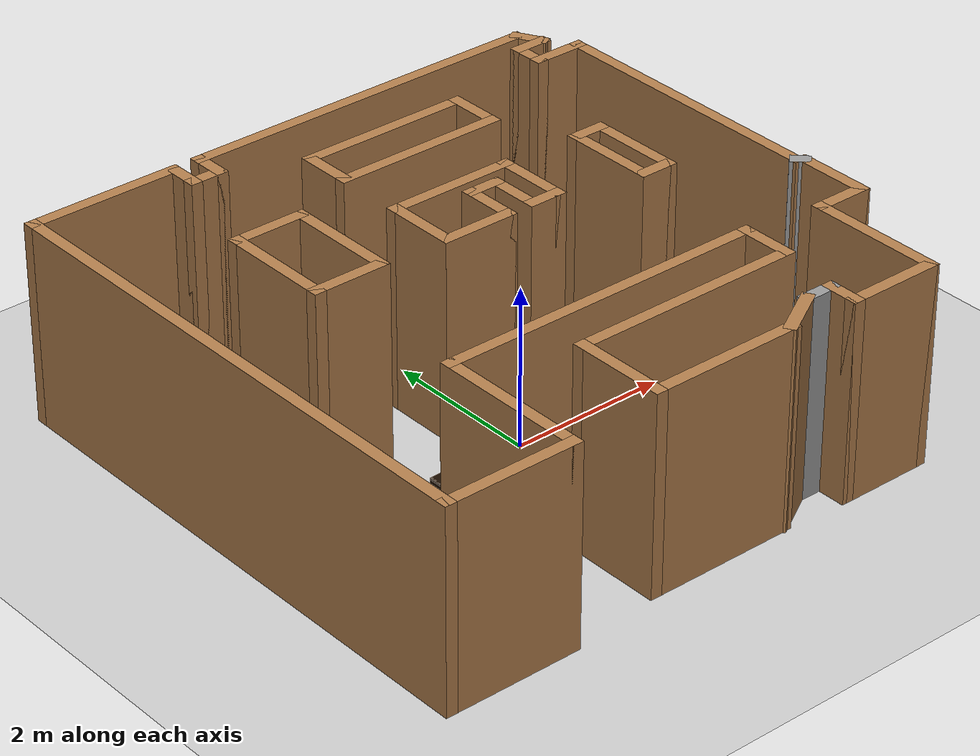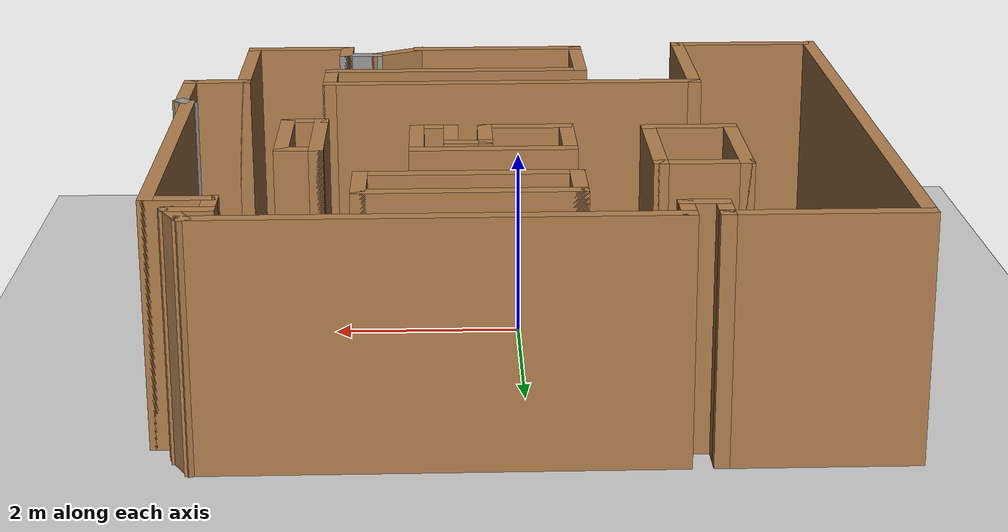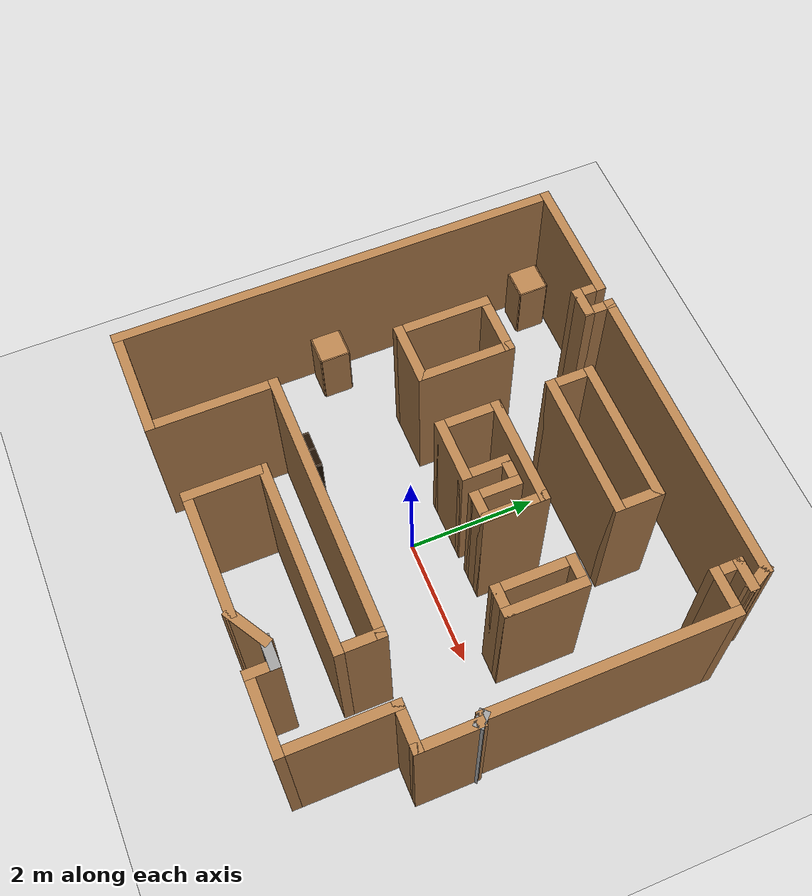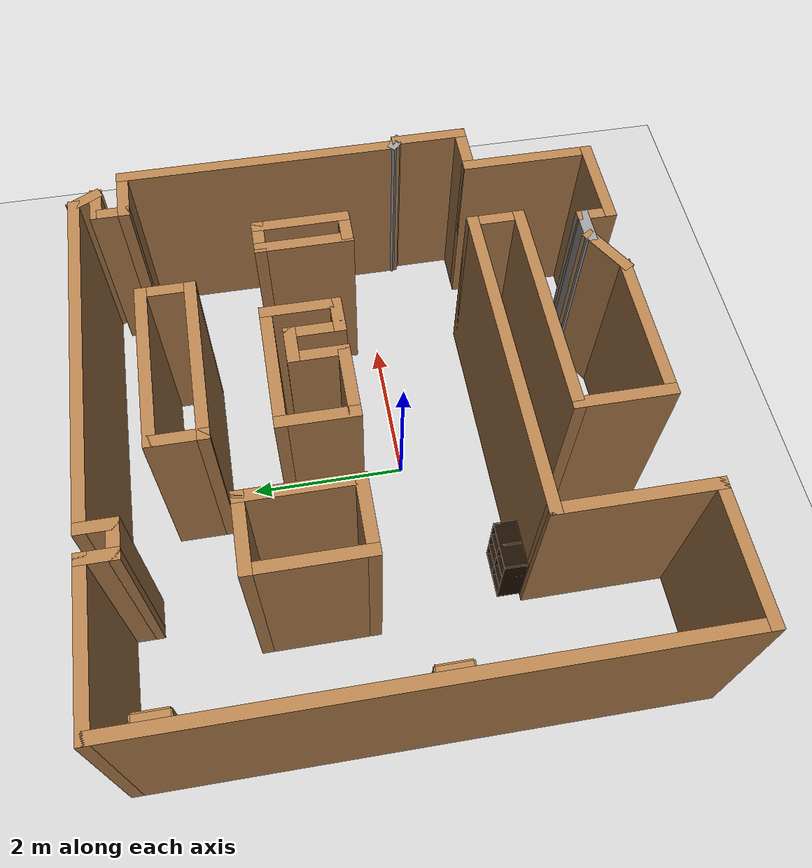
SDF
<sdf version="1.6">
 <world name="default">
  <light name="sun" type="directional">
   <pose>0 0 10 0 -0 0</pose>
   <diffuse>0.8 0.8 0.8 1</diffuse>
   <specular>0.2 0.2 0.2 1</specular>
   <attenuation>
    <range>1000</range>
    <constant>0.9</constant>
    <linear>0.01</linear>
    <quadratic>0.001</quadratic>
   </attenuation>
   <direction>-0.5 0.1 -0.9</direction>
  </light>
  <model name="ground_plane">
   <static>1</static>
   <link name="link">
    <collision name="collision">
     <geometry><plane><normal>0 0 1</normal><size>100 100</size></plane></geometry>
     <surface><friction><ode><mu>100</mu><mu2>50</mu2></ode></friction></surface>
    </collision>
    <visual name="visual">
     <cast_shadows>0</cast_shadows>
     <geometry><plane><normal>0 0 1</normal><size>100 100</size></plane></geometry>
     <material>
      <script><uri>file://media/materials/scripts/gazebo.material</uri><name>Gazebo/Grey</name></script>
     </material>
    </visual>
   </link>
  </model>
  <gravity>0 0 -9.8</gravity>
  <magnetic_field>6e-06 2.3e-05 -4.2e-05</magnetic_field>
  <atmosphere type="adiabatic"/>
  <physics name="default_physics" default="0" type="ode">
   <max_step_size>0.001</max_step_size>
   <real_time_factor>1</real_time_factor>
   <real_time_update_rate>1000</real_time_update_rate>
  </physics>
  <scene><ambient>0.4 0.4 0.4 1</ambient><background>0.7 0.7 0.7 1</background><shadows>1</shadows></scene>
  <spherical_coordinates>
   <surface_model>EARTH_WGS84</surface_model>
   <latitude_deg>0</latitude_deg>
   <longitude_deg>0</longitude_deg>
   <elevation>0</elevation>
   <heading_deg>0</heading_deg>
  </spherical_coordinates>
  <model name="map_6">
   <pose>0.022593 0.332375 0 0 -0 0</pose>
   <link name="Wall_0">
    <collision name="Wall_0_Collision">
     <geometry><box><size>4.75 0.15 2.5</size></box></geometry>
     <pose>0 0 1.25 0 -0 0</pose>
    </collision>
    <visual name="Wall_0_Visual">
     <pose>0 0 1.25 0 -0 0</pose>
     <geometry><box><size>4.75 0.15 2.5</size></box></geometry>
     <material>
      <script><uri>file://media/materials/scripts/gazebo.material</uri><name>Gazebo/Wood</name></script>
      <ambient>1 1 1 1</ambient>
     </material>
     <meta><layer>0</layer></meta>
    </visual>
    <pose>0.84966 3.41177 0 0 -0 3.14159</pose>
   </link>
   <link name="Wall_10">
    <collision name="Wall_10_Collision">
     <geometry><box><size>1.75 0.15 2.5</size></box></geometry>
     <pose>0 0 1.25 0 -0 0</pose>
    </collision>
    <visual name="Wall_10_Visual">
     <pose>0 0 1.25 0 -0 0</pose>
     <geometry><box><size>1.75 0.15 2.5</size></box></geometry>
     <material>
      <script><uri>file://media/materials/scripts/gazebo.material</uri><name>Gazebo/Wood</name></script>
      <ambient>1 1 1 1</ambient>
     </material>
     <meta><layer>0</layer></meta>
    </visual>
    <pose>-2.85034 -3.43823 0 0 -0 0</pose>
   </link>
   <link name="Wall_11">
    <collision name="Wall_11_Collision">
     <geometry><box><size>2 0.15 2.5</size></box></geometry>
     <pose>0 0 1.25 0 -0 0</pose>
    </collision>
    <visual name="Wall_11_Visual">
     <pose>0 0 1.25 0 -0 0</pose>
     <geometry><box><size>2 0.15 2.5</size></box></geometry>
     <material>
      <script><uri>file://media/materials/scripts/gazebo.material</uri><name>Gazebo/Wood</name></script>
      <ambient>1 1 1 1</ambient>
     </material>
     <meta><layer>0</layer></meta>
    </visual>
    <pose>-2.05034 -2.51323 0 0 -0 1.5708</pose>
   </link>
   <link name="Wall_12">
    <collision name="Wall_12_Collision">
     <geometry><box><size>4.25 0.15 2.5</size></box></geometry>
     <pose>0 0 1.25 0 -0 0</pose>
    </collision>
    <visual name="Wall_12_Visual">
     <pose>0 0 1.25 0 -0 0</pose>
     <geometry><box><size>4.25 0.15 2.5</size></box></geometry>
     <material>
      <script><uri>file://media/materials/scripts/gazebo.material</uri><name>Gazebo/Wood</name></script>
      <ambient>1 1 1 1</ambient>
     </material>
     <meta><layer>0</layer></meta>
    </visual>
    <pose>-0.00034 -1.58823 0 0 -0 0</pose>
   </link>
   <link name="Wall_13">
    <collision name="Wall_13_Collision">
     <geometry><box><size>0.75 0.15 2.5</size></box></geometry>
     <pose>0 0 1.25 0 -0 0</pose>
    </collision>
    <visual name="Wall_13_Visual">
     <pose>0 0 1.25 0 -0 0</pose>
     <geometry><box><size>0.75 0.15 2.5</size></box></geometry>
     <material>
      <script><uri>file://media/materials/scripts/gazebo.material</uri><name>Gazebo/Wood</name></script>
      <ambient>1 1 1 1</ambient>
     </material>
     <meta><layer>0</layer></meta>
    </visual>
    <pose>2.04966 -1.88823 0 0 -0 -1.5708</pose>
   </link>
   <link name="Wall_14">
    <collision name="Wall_14_Collision">
     <geometry><box><size>3 0.15 2.5</size></box></geometry>
     <pose>0 0 1.25 0 -0 0</pose>
    </collision>
    <visual name="Wall_14_Visual">
     <pose>0 0 1.25 0 -0 0</pose>
     <geometry><box><size>3 0.15 2.5</size></box></geometry>
     <material>
      <script><uri>file://media/materials/scripts/gazebo.material</uri><name>Gazebo/Wood</name></script>
      <ambient>1 1 1 1</ambient>
     </material>
     <meta><layer>0</layer></meta>
    </visual>
    <pose>0.62466 -2.18823 0 0 -0 3.14159</pose>
   </link>
   <link name="Wall_15">
    <collision name="Wall_15_Collision">
     <geometry><box><size>1.25 0.15 2.5</size></box></geometry>
     <pose>0 0 1.25 0 -0 0</pose>
    </collision>
    <visual name="Wall_15_Visual">
     <pose>0 0 1.25 0 -0 0</pose>
     <geometry><box><size>1.25 0.15 2.5</size></box></geometry>
     <material>
      <script><uri>file://media/materials/scripts/gazebo.material</uri><name>Gazebo/Wood</name></script>
      <ambient>1 1 1 1</ambient>
     </material>
     <meta><layer>0</layer></meta>
    </visual>
    <pose>-0.80034 -2.73823 0 0 -0 -1.5708</pose>
   </link>
   <link name="Wall_16">
    <collision name="Wall_16_Collision">
     <geometry><box><size>2 0.15 2.5</size></box></geometry>
     <pose>0 0 1.25 0 -0 0</pose>
    </collision>
    <visual name="Wall_16_Visual">
     <pose>0 0 1.25 0 -0 0</pose>
     <geometry><box><size>2 0.15 2.5</size></box></geometry>
     <material>
      <script><uri>file://media/materials/scripts/gazebo.material</uri><name>Gazebo/Wood</name></script>
      <ambient>1 1 1 1</ambient>
     </material>
     <meta><layer>0</layer></meta>
    </visual>
    <pose>0.12466 -3.28823 0 0 -0 0</pose>
   </link>
   <link name="Wall_17">
    <collision name="Wall_17_Collision">
     <geometry><box><size>0.75 0.15 2.5</size></box></geometry>
     <pose>0 0 1.25 0 -0 0</pose>
    </collision>
    <visual name="Wall_17_Visual">
     <pose>0 0 1.25 0 -0 0</pose>
     <geometry><box><size>0.75 0.15 2.5</size></box></geometry>
     <material>
      <script><uri>file://media/materials/scripts/gazebo.material</uri><name>Gazebo/Wood</name></script>
      <ambient>1 1 1 1</ambient>
     </material>
     <meta><layer>0</layer></meta>
    </visual>
    <pose>1.30947 -3.13823 0 0 -0 0.523599</pose>
   </link>
   <link name="Wall_18">
    <collision name="Wall_18_Collision">
     <geometry><box><size>0.5 0.15 2.5</size></box></geometry>
     <pose>0 0 1.25 0 -0 0</pose>
    </collision>
    <visual name="Wall_18_Visual">
     <pose>0 0 1.25 0 -0 0</pose>
     <geometry><box><size>0.5 0.15 2.5</size></box></geometry>
     <material>
      <script><uri>file://media/materials/scripts/gazebo.material</uri><name>Gazebo/Grey</name></script>
      <ambient>1 1 1 1</ambient>
     </material>
     <meta><layer>0</layer></meta>
    </visual>
    <pose>1.74428 -2.98823 0 0 -0 0</pose>
   </link>
   <link name="Wall_19">
    <collision name="Wall_19_Collision">
     <geometry><box><size>0.5 0.15 2.5</size></box></geometry>
     <pose>0 0 1.25 0 -0 0</pose>
    </collision>
    <visual name="Wall_19_Visual">
     <pose>0 0 1.25 0 -0 0</pose>
     <geometry><box><size>0.5 0.15 2.5</size></box></geometry>
     <material>
      <script><uri>file://media/materials/scripts/gazebo.material</uri><name>Gazebo/Wood</name></script>
      <ambient>1 1 1 1</ambient>
     </material>
     <meta><layer>0</layer></meta>
    </visual>
    <pose>1.91928 -3.16323 0 0 -0 -1.5708</pose>
   </link>
   <link name="Wall_20">
    <collision name="Wall_20_Collision">
     <geometry><box><size>1.25 0.15 2.5</size></box></geometry>
     <pose>0 0 1.25 0 -0 0</pose>
    </collision>
    <visual name="Wall_20_Visual">
     <pose>0 0 1.25 0 -0 0</pose>
     <geometry><box><size>1.25 0.15 2.5</size></box></geometry>
     <material>
      <script><uri>file://media/materials/scripts/gazebo.material</uri><name>Gazebo/Wood</name></script>
      <ambient>1 1 1 1</ambient>
     </material>
     <meta><layer>0</layer></meta>
    </visual>
    <pose>2.46928 -3.33823 0 0 -0 0</pose>
   </link>
   <link name="Wall_21">
    <collision name="Wall_21_Collision">
     <geometry><box><size>1.75 0.15 2.5</size></box></geometry>
     <pose>0 0 1.25 0 -0 0</pose>
    </collision>
    <visual name="Wall_21_Visual">
     <pose>0 0 1.25 0 -0 0</pose>
     <geometry><box><size>1.75 0.15 2.5</size></box></geometry>
     <material>
      <script><uri>file://media/materials/scripts/gazebo.material</uri><name>Gazebo/Wood</name></script>
      <ambient>1 1 1 1</ambient>
     </material>
     <meta><layer>0</layer></meta>
    </visual>
    <pose>3.01927 -2.53823 0 0 -0 1.5708</pose>
   </link>
   <link name="Wall_22">
    <collision name="Wall_22_Collision">
     <geometry><box><size>0.75 0.15 2.5</size></box></geometry>
     <pose>0 0 1.25 0 -0 0</pose>
    </collision>
    <visual name="Wall_22_Visual">
     <pose>0 0 1.25 0 -0 0</pose>
     <geometry><box><size>0.75 0.15 2.5</size></box></geometry>
     <material>
      <script><uri>file://media/materials/scripts/gazebo.material</uri><name>Gazebo/Wood</name></script>
      <ambient>1 1 1 1</ambient>
     </material>
     <meta><layer>0</layer></meta>
    </visual>
    <pose>3.31928 -1.73823 0 0 -0 0</pose>
   </link>
   <link name="Wall_23">
    <collision name="Wall_23_Collision">
     <geometry><box><size>1 0.15 2.5</size></box></geometry>
     <pose>0 0 1.25 0 -0 0</pose>
    </collision>
    <visual name="Wall_23_Visual">
     <pose>0 0 1.25 0 -0 0</pose>
     <geometry><box><size>1 0.15 2.5</size></box></geometry>
     <material>
      <script><uri>file://media/materials/scripts/gazebo.material</uri><name>Gazebo/Wood</name></script>
      <ambient>1 1 1 1</ambient>
     </material>
     <meta><layer>0</layer></meta>
    </visual>
    <pose>3.61928 -1.31323 0 0 -0 1.5708</pose>
   </link>
   <link name="Wall_24">
    <collision name="Wall_24_Collision">
     <geometry><box><size>0.25 0.15 2.5</size></box></geometry>
     <pose>0 0 1.25 0 -0 0</pose>
    </collision>
    <visual name="Wall_24_Visual">
     <pose>0 0 1.25 0 -0 0</pose>
     <geometry><box><size>0.25 0.15 2.5</size></box></geometry>
     <material>
      <script><uri>file://media/materials/scripts/gazebo.material</uri><name>Gazebo/Grey</name></script>
      <ambient>1 1 1 1</ambient>
     </material>
     <meta><layer>0</layer></meta>
    </visual>
    <pose>3.58392 -0.852877 0 0 -0 2.35619</pose>
   </link>
   <link name="Wall_25">
    <collision name="Wall_25_Collision">
     <geometry><box><size>3.75 0.15 2.5</size></box></geometry>
     <pose>0 0 1.25 0 -0 0</pose>
    </collision>
    <visual name="Wall_25_Visual">
     <pose>0 0 1.25 0 -0 0</pose>
     <geometry><box><size>3.75 0.15 2.5</size></box></geometry>
     <material>
      <script><uri>file://media/materials/scripts/gazebo.material</uri><name>Gazebo/Wood</name></script>
      <ambient>1 1 1 1</ambient>
     </material>
     <meta><layer>0</layer></meta>
    </visual>
    <pose>3.54856 0.982478 0 0 -0 1.5708</pose>
   </link>
   <link name="Wall_26">
    <collision name="Wall_26_Collision">
     <geometry><box><size>0.75 0.15 2.5</size></box></geometry>
     <pose>0 0 1.25 0 -0 0</pose>
    </collision>
    <visual name="Wall_26_Visual">
     <pose>0 0 1.25 0 -0 0</pose>
     <geometry><box><size>0.75 0.15 2.5</size></box></geometry>
     <material>
      <script><uri>file://media/materials/scripts/gazebo.material</uri><name>Gazebo/Wood</name></script>
      <ambient>1 1 1 1</ambient>
     </material>
     <meta><layer>0</layer></meta>
    </visual>
    <pose>3.24856 2.78248 0 0 -0 3.14159</pose>
   </link>
   <link name="Wall_27">
    <collision name="Wall_27_Collision">
     <geometry><box><size>0.5 0.15 2.5</size></box></geometry>
     <pose>0 0 1.25 0 -0 0</pose>
    </collision>
    <visual name="Wall_27_Visual">
     <pose>0 0 1.25 0 -0 0</pose>
     <geometry><box><size>0.5 0.15 2.5</size></box></geometry>
     <material>
      <script><uri>file://media/materials/scripts/gazebo.material</uri><name>Gazebo/Wood</name></script>
      <ambient>1 1 1 1</ambient>
     </material>
     <meta><layer>0</layer></meta>
    </visual>
    <pose>2.94856 2.95748 0 0 -0 1.5708</pose>
   </link>
   <link name="Wall_28">
    <collision name="Wall_28_Collision">
     <geometry><box><size>0.5 0.15 2.5</size></box></geometry>
     <pose>0 0 1.25 0 -0 0</pose>
    </collision>
    <visual name="Wall_28_Visual">
     <pose>0 0 1.25 0 -0 0</pose>
     <geometry><box><size>0.5 0.15 2.5</size></box></geometry>
     <material>
      <script><uri>file://media/materials/scripts/gazebo.material</uri><name>Gazebo/Wood</name></script>
      <ambient>1 1 1 1</ambient>
     </material>
     <meta><layer>0</layer></meta>
    </visual>
    <pose>3.12356 3.13248 0 0 -0 0</pose>
   </link>
   <link name="Wall_29">
    <collision name="Wall_29_Collision">
     <geometry><box><size>0.466504 0.15 2.5</size></box></geometry>
     <pose>0 0 1.25 0 -0 0</pose>
    </collision>
    <visual name="Wall_29_Visual">
     <pose>0 0 1.25 0 -0 0</pose>
     <geometry><box><size>0.466504 0.15 2.5</size></box></geometry>
     <material>
      <script><uri>file://media/materials/scripts/gazebo.material</uri><name>Gazebo/Wood</name></script>
      <ambient>1 1 1 1</ambient>
     </material>
     <meta><layer>0</layer></meta>
    </visual>
    <pose>3.22411 3.27212 0 0 -0 2.06061</pose>
   </link>
   <link name="Wall_31">
    <collision name="Wall_31_Collision">
     <geometry><box><size>1 0.15 2.5</size></box></geometry>
     <pose>0 0 1.25 0 -0 0</pose>
    </collision>
    <visual name="Wall_31_Visual">
     <pose>0 0 1.25 0 -0 0</pose>
     <geometry><box><size>1 0.15 2.5</size></box></geometry>
     <material>
      <script><uri>file://media/materials/scripts/gazebo.material</uri><name>Gazebo/Wood</name></script>
      <ambient>1 1 1 1</ambient>
     </material>
     <meta><layer>0</layer></meta>
    </visual>
    <pose>-1.77472 1.73565 0 0 -0 0</pose>
   </link>
   <link name="Wall_32">
    <collision name="Wall_32_Collision">
     <geometry><box><size>1.5 0.15 2.5</size></box></geometry>
     <pose>0 0 1.25 0 -0 0</pose>
    </collision>
    <visual name="Wall_32_Visual">
     <pose>0 0 1.25 0 -0 0</pose>
     <geometry><box><size>1.5 0.15 2.5</size></box></geometry>
     <material>
      <script><uri>file://media/materials/scripts/gazebo.material</uri><name>Gazebo/Wood</name></script>
      <ambient>1 1 1 1</ambient>
     </material>
     <meta><layer>0</layer></meta>
    </visual>
    <pose>-1.34971 1.06065 0 0 -0 -1.5708</pose>
   </link>
   <link name="Wall_33">
    <collision name="Wall_33_Collision">
     <geometry><box><size>1 0.15 2.5</size></box></geometry>
     <pose>0 0 1.25 0 -0 0</pose>
    </collision>
    <visual name="Wall_33_Visual">
     <pose>0 0 1.25 0 -0 0</pose>
     <geometry><box><size>1 0.15 2.5</size></box></geometry>
     <material>
      <script><uri>file://media/materials/scripts/gazebo.material</uri><name>Gazebo/Wood</name></script>
      <ambient>1 1 1 1</ambient>
     </material>
     <meta><layer>0</layer></meta>
    </visual>
    <pose>-1.77472 0.38565 0 0 -0 3.14159</pose>
   </link>
   <link name="Wall_34">
    <collision name="Wall_34_Collision">
     <geometry><box><size>1.5 0.15 2.5</size></box></geometry>
     <pose>0 0 1.25 0 -0 0</pose>
    </collision>
    <visual name="Wall_34_Visual">
     <pose>0 0 1.25 0 -0 0</pose>
     <geometry><box><size>1.5 0.15 2.5</size></box></geometry>
     <material>
      <script><uri>file://media/materials/scripts/gazebo.material</uri><name>Gazebo/Wood</name></script>
      <ambient>1 1 1 1</ambient>
     </material>
     <meta><layer>0</layer></meta>
    </visual>
    <pose>-2.19971 1.06065 0 0 -0 1.5708</pose>
   </link>
   <link name="Wall_37">
    <collision name="Wall_37_Collision">
     <geometry><box><size>2.25 0.15 2.5</size></box></geometry>
     <pose>0 0 1.25 0 -0 0</pose>
    </collision>
    <visual name="Wall_37_Visual">
     <pose>0 0 1.25 0 -0 0</pose>
     <geometry><box><size>2.25 0.15 2.5</size></box></geometry>
     <material>
      <script><uri>file://media/materials/scripts/gazebo.material</uri><name>Gazebo/Wood</name></script>
      <ambient>1 1 1 1</ambient>
     </material>
     <meta><layer>0</layer></meta>
    </visual>
    <pose>0.538456 2.03297 0 0 -0 0</pose>
   </link>
   <link name="Wall_39">
    <collision name="Wall_39_Collision">
     <geometry><box><size>0.75 0.15 2.5</size></box></geometry>
     <pose>0 0 1.25 0 -0 0</pose>
    </collision>
    <visual name="Wall_39_Visual">
     <pose>0 0 1.25 0 -0 0</pose>
     <geometry><box><size>0.75 0.15 2.5</size></box></geometry>
     <material>
      <script><uri>file://media/materials/scripts/gazebo.material</uri><name>Gazebo/Wood</name></script>
      <ambient>1 1 1 1</ambient>
     </material>
     <meta><layer>0</layer></meta>
    </visual>
    <pose>-0.511544 2.33297 0 0 -0 1.5708</pose>
   </link>
   <link name="Wall_4">
    <collision name="Wall_4_Collision">
     <geometry><box><size>0.5 0.15 2.5</size></box></geometry>
     <pose>0 0 1.25 0 -0 0</pose>
    </collision>
    <visual name="Wall_4_Visual">
     <pose>0 0 1.25 0 -0 0</pose>
     <geometry><box><size>0.5 0.15 2.5</size></box></geometry>
     <material>
      <script><uri>file://media/materials/scripts/gazebo.material</uri><name>Gazebo/Wood</name></script>
      <ambient>1 1 1 1</ambient>
     </material>
     <meta><layer>0</layer></meta>
    </visual>
    <pose>-1.45034 3.23677 0 0 -0 -1.5708</pose>
   </link>
   <link name="Wall_40">
    <collision name="Wall_40_Collision">
     <geometry><box><size>2.25 0.15 2.5</size></box></geometry>
     <pose>0 0 1.25 0 -0 0</pose>
    </collision>
    <visual name="Wall_40_Visual">
     <pose>0 0 1.25 0 -0 0</pose>
     <geometry><box><size>2.25 0.15 2.5</size></box></geometry>
     <material>
      <script><uri>file://media/materials/scripts/gazebo.material</uri><name>Gazebo/Wood</name></script>
      <ambient>1 1 1 1</ambient>
     </material>
     <meta><layer>0</layer></meta>
    </visual>
    <pose>0.538456 2.63297 0 0 -0 0</pose>
   </link>
   <link name="Wall_41">
    <collision name="Wall_41_Collision">
     <geometry><box><size>0.75 0.15 2.5</size></box></geometry>
     <pose>0 0 1.25 0 -0 0</pose>
    </collision>
    <visual name="Wall_41_Visual">
     <pose>0 0 1.25 0 -0 0</pose>
     <geometry><box><size>0.75 0.15 2.5</size></box></geometry>
     <material>
      <script><uri>file://media/materials/scripts/gazebo.material</uri><name>Gazebo/Wood</name></script>
      <ambient>1 1 1 1</ambient>
     </material>
     <meta><layer>0</layer></meta>
    </visual>
    <pose>1.58846 2.33297 0 0 -0 -1.5708</pose>
   </link>
   <link name="Wall_44">
    <collision name="Wall_44_Collision">
     <geometry><box><size>1 0.15 2.5</size></box></geometry>
     <pose>0 0 1.25 0 -0 0</pose>
    </collision>
    <visual name="Wall_44_Visual">
     <pose>0 0 1.25 0 -0 0</pose>
     <geometry><box><size>1 0.15 2.5</size></box></geometry>
     <material>
      <script><uri>file://media/materials/scripts/gazebo.material</uri><name>Gazebo/Wood</name></script>
      <ambient>1 1 1 1</ambient>
     </material>
     <meta><layer>0</layer></meta>
    </visual>
    <pose>-0.496335 0.747926 0 0 -0 -1.5708</pose>
   </link>
   <link name="Wall_45">
    <collision name="Wall_45_Collision">
     <geometry><box><size>1 0.15 2.5</size></box></geometry>
     <pose>0 0 1.25 0 -0 0</pose>
    </collision>
    <visual name="Wall_45_Visual">
     <pose>0 0 1.25 0 -0 0</pose>
     <geometry><box><size>1 0.15 2.5</size></box></geometry>
     <material>
      <script><uri>file://media/materials/scripts/gazebo.material</uri><name>Gazebo/Wood</name></script>
      <ambient>1 1 1 1</ambient>
     </material>
     <meta><layer>0</layer></meta>
    </visual>
    <pose>-0.071335 0.322926 0 0 -0 0</pose>
   </link>
   <link name="Wall_46">
    <collision name="Wall_46_Collision">
     <geometry><box><size>0.75 0.15 2.5</size></box></geometry>
     <pose>0 0 1.25 0 -0 0</pose>
    </collision>
    <visual name="Wall_46_Visual">
     <pose>0 0 1.25 0 -0 0</pose>
     <geometry><box><size>0.75 0.15 2.5</size></box></geometry>
     <material>
      <script><uri>file://media/materials/scripts/gazebo.material</uri><name>Gazebo/Wood</name></script>
      <ambient>1 1 1 1</ambient>
     </material>
     <meta><layer>0</layer></meta>
    </visual>
    <pose>0.353665 0.622926 0 0 -0 1.5708</pose>
   </link>
   <link name="Wall_47">
    <collision name="Wall_47_Collision">
     <geometry><box><size>0.5 0.15 2.5</size></box></geometry>
     <pose>0 0 1.25 0 -0 0</pose>
    </collision>
    <visual name="Wall_47_Visual">
     <pose>0 0 1.25 0 -0 0</pose>
     <geometry><box><size>0.5 0.15 2.5</size></box></geometry>
     <material>
      <script><uri>file://media/materials/scripts/gazebo.material</uri><name>Gazebo/Wood</name></script>
      <ambient>1 1 1 1</ambient>
     </material>
     <meta><layer>0</layer></meta>
    </visual>
    <pose>0.528665 0.922926 0 0 -0 0</pose>
   </link>
   <link name="Wall_48">
    <collision name="Wall_48_Collision">
     <geometry><box><size>0.75 0.15 2.5</size></box></geometry>
     <pose>0 0 1.25 0 -0 0</pose>
    </collision>
    <visual name="Wall_48_Visual">
     <pose>0 0 1.25 0 -0 0</pose>
     <geometry><box><size>0.75 0.15 2.5</size></box></geometry>
     <material>
      <script><uri>file://media/materials/scripts/gazebo.material</uri><name>Gazebo/Wood</name></script>
      <ambient>1 1 1 1</ambient>
     </material>
     <meta><layer>0</layer></meta>
    </visual>
    <pose>0.703665 0.622926 0 0 -0 -1.5708</pose>
   </link>
   <link name="Wall_49">
    <collision name="Wall_49_Collision">
     <geometry><box><size>0.5 0.15 2.5</size></box></geometry>
     <pose>0 0 1.25 0 -0 0</pose>
    </collision>
    <visual name="Wall_49_Visual">
     <pose>0 0 1.25 0 -0 0</pose>
     <geometry><box><size>0.5 0.15 2.5</size></box></geometry>
     <material>
      <script><uri>file://media/materials/scripts/gazebo.material</uri><name>Gazebo/Wood</name></script>
      <ambient>1 1 1 1</ambient>
     </material>
     <meta><layer>0</layer></meta>
    </visual>
    <pose>0.878665 0.322926 0 0 -0 0</pose>
   </link>
   <link name="Wall_5">
    <collision name="Wall_5_Collision">
     <geometry><box><size>0.5 0.15 2.5</size></box></geometry>
     <pose>0 0 1.25 0 -0 0</pose>
    </collision>
    <visual name="Wall_5_Visual">
     <pose>0 0 1.25 0 -0 0</pose>
     <geometry><box><size>0.5 0.15 2.5</size></box></geometry>
     <material>
      <script><uri>file://media/materials/scripts/gazebo.material</uri><name>Gazebo/Wood</name></script>
      <ambient>1 1 1 1</ambient>
     </material>
     <meta><layer>0</layer></meta>
    </visual>
    <pose>-1.62534 3.06177 0 0 -0 3.14159</pose>
   </link>
   <link name="Wall_50">
    <collision name="Wall_50_Collision">
     <geometry><box><size>1 0.15 2.5</size></box></geometry>
     <pose>0 0 1.25 0 -0 0</pose>
    </collision>
    <visual name="Wall_50_Visual">
     <pose>0 0 1.25 0 -0 0</pose>
     <geometry><box><size>1 0.15 2.5</size></box></geometry>
     <material>
      <script><uri>file://media/materials/scripts/gazebo.material</uri><name>Gazebo/Wood</name></script>
      <ambient>1 1 1 1</ambient>
     </material>
     <meta><layer>0</layer></meta>
    </visual>
    <pose>1.05367 0.747926 0 0 -0 1.5708</pose>
   </link>
   <link name="Wall_51">
    <collision name="Wall_51_Collision">
     <geometry><box><size>1.7 0.15 2.5</size></box></geometry>
     <pose>0 0 1.25 0 -0 0</pose>
    </collision>
    <visual name="Wall_51_Visual">
     <pose>0 0 1.25 0 -0 0</pose>
     <geometry><box><size>1.7 0.15 2.5</size></box></geometry>
     <material>
      <script><uri>file://media/materials/scripts/gazebo.material</uri><name>Gazebo/Wood</name></script>
      <ambient>1 1 1 1</ambient>
     </material>
     <meta><layer>0</layer></meta>
    </visual>
    <pose>0.278665 1.17293 0 0 -0 3.14159</pose>
   </link>
   <link name="Wall_54">
    <collision name="Wall_54_Collision">
     <geometry><box><size>1.25 0.15 2.5</size></box></geometry>
     <pose>0 0 1.25 0 -0 0</pose>
    </collision>
    <visual name="Wall_54_Visual">
     <pose>0 0 1.25 0 -0 0</pose>
     <geometry><box><size>1.25 0.15 2.5</size></box></geometry>
     <material>
      <script><uri>file://media/materials/scripts/gazebo.material</uri><name>Gazebo/Wood</name></script>
      <ambient>1 1 1 1</ambient>
     </material>
     <meta><layer>0</layer></meta>
    </visual>
    <pose>2.05873 0.5773 0 0 -0 -1.5708</pose>
   </link>
   <link name="Wall_55">
    <collision name="Wall_55_Collision">
     <geometry><box><size>0.5 0.15 2.5</size></box></geometry>
     <pose>0 0 1.25 0 -0 0</pose>
    </collision>
    <visual name="Wall_55_Visual">
     <pose>0 0 1.25 0 -0 0</pose>
     <geometry><box><size>0.5 0.15 2.5</size></box></geometry>
     <material>
      <script><uri>file://media/materials/scripts/gazebo.material</uri><name>Gazebo/Wood</name></script>
      <ambient>1 1 1 1</ambient>
     </material>
     <meta><layer>0</layer></meta>
    </visual>
    <pose>2.23373 0.0273 0 0 -0 0</pose>
   </link>
   <link name="Wall_56">
    <collision name="Wall_56_Collision">
     <geometry><box><size>1.25 0.15 2.5</size></box></geometry>
     <pose>0 0 1.25 0 -0 0</pose>
    </collision>
    <visual name="Wall_56_Visual">
     <pose>0 0 1.25 0 -0 0</pose>
     <geometry><box><size>1.25 0.15 2.5</size></box></geometry>
     <material>
      <script><uri>file://media/materials/scripts/gazebo.material</uri><name>Gazebo/Wood</name></script>
      <ambient>1 1 1 1</ambient>
     </material>
     <meta><layer>0</layer></meta>
    </visual>
    <pose>2.40874 0.5773 0 0 -0 1.5708</pose>
   </link>
   <link name="Wall_57">
    <collision name="Wall_57_Collision">
     <geometry><box><size>0.5 0.15 2.5</size></box></geometry>
     <pose>0 0 1.25 0 -0 0</pose>
    </collision>
    <visual name="Wall_57_Visual">
     <pose>0 0 1.25 0 -0 0</pose>
     <geometry><box><size>0.5 0.15 2.5</size></box></geometry>
     <material>
      <script><uri>file://media/materials/scripts/gazebo.material</uri><name>Gazebo/Wood</name></script>
      <ambient>1 1 1 1</ambient>
     </material>
     <meta><layer>0</layer></meta>
    </visual>
    <pose>2.23373 1.1273 0 0 -0 3.14159</pose>
   </link>
   <link name="Wall_6">
    <collision name="Wall_6_Collision">
     <geometry><box><size>0.5 0.15 2.5</size></box></geometry>
     <pose>0 0 1.25 0 -0 0</pose>
    </collision>
    <visual name="Wall_6_Visual">
     <pose>0 0 1.25 0 -0 0</pose>
     <geometry><box><size>0.5 0.15 2.5</size></box></geometry>
     <material>
      <script><uri>file://media/materials/scripts/gazebo.material</uri><name>Gazebo/Wood</name></script>
      <ambient>1 1 1 1</ambient>
     </material>
     <meta><layer>0</layer></meta>
    </visual>
    <pose>-1.80034 3.23677 0 0 -0 1.5708</pose>
   </link>
   <link name="Wall_7">
    <collision name="Wall_7_Collision">
     <geometry><box><size>2 0.15 2.5</size></box></geometry>
     <pose>0 0 1.25 0 -0 0</pose>
    </collision>
    <visual name="Wall_7_Visual">
     <pose>0 0 1.25 0 -0 0</pose>
     <geometry><box><size>2 0.15 2.5</size></box></geometry>
     <material>
      <script><uri>file://media/materials/scripts/gazebo.material</uri><name>Gazebo/Wood</name></script>
      <ambient>1 1 1 1</ambient>
     </material>
     <meta><layer>0</layer></meta>
    </visual>
    <pose>-2.72534 3.41177 0 0 -0 3.14159</pose>
   </link>
   <link name="Wall_9">
    <collision name="Wall_9_Collision">
     <geometry><box><size>7 0.15 2.5</size></box></geometry>
     <pose>0 0 1.25 0 -0 0</pose>
    </collision>
    <visual name="Wall_9_Visual">
     <pose>0 0 1.25 0 -0 0</pose>
     <geometry><box><size>7 0.15 2.5</size></box></geometry>
     <material>
      <script><uri>file://media/materials/scripts/gazebo.material</uri><name>Gazebo/Wood</name></script>
      <ambient>1 1 1 1</ambient>
     </material>
     <meta><layer>0</layer></meta>
    </visual>
    <pose>-3.65034 -0.013233 0 0 -0 -1.5708</pose>
   </link>
   <static>1</static>
  </model>
  <model name="6_Cube_StorageE">
   <link name="Wall_0">
    <pose>0 0 0.01 0 -0 0</pose>
    <inertial>
     <mass>1.6201</mass>
     <inertia><ixx>0.0119</ixx><iyy>0.0631</iyy><izz>0.0513</izz><ixy>0</ixy><ixz>0</ixz><iyz>0</iyz></inertia>
    </inertial>
    <collision name="Wall_0_Collision"><geometry><box><size>0.616 0.296 0.02</size></box></geometry></collision>
    <visual name="Wall_0_Visual">
     <geometry><box><size>0.616 0.296 0.02</size></box></geometry>
     <material>
      <script><uri>file://media/materials/scripts/gazebo.material</uri><name>Gazebo/Grey</name></script>
      <ambient>0.105882 0.0509804 0 1</ambient>
     </material>
    </visual>
   </link>
   <joint name="0_2" type="fixed">
    <pose>-0.308 0 0 0 -0 0</pose>
    <parent>Wall_2</parent>
    <child>Wall_0</child>
    <axis>
     <xyz>1 0 0</xyz>
     <use_parent_model_frame>0</use_parent_model_frame>
     <limit><lower>-1e+16</lower><upper>1e+16</upper></limit>
    </axis>
   </joint>
   <joint name="0_12" type="fixed">
    <parent>Wall_12</parent>
    <child>Wall_0</child>
    <axis>
     <xyz>0 0 1</xyz>
     <use_parent_model_frame>0</use_parent_model_frame>
     <limit><lower>-1e+16</lower><upper>1e+16</upper></limit>
    </axis>
   </joint>
   <joint name="0_4" type="fixed">
    <pose>0.308 0 0 0 -0 0</pose>
    <parent>Wall_4</parent>
    <child>Wall_0</child>
    <axis>
     <xyz>1 0 0</xyz>
     <use_parent_model_frame>0</use_parent_model_frame>
     <limit><lower>-1e+16</lower><upper>1e+16</upper></limit>
    </axis>
   </joint>
   <link name="Wall_10">
    <pose>0 0 0.61 0 -0 0</pose>
    <inertial>
     <mass>1.6201</mass>
     <inertia><ixx>0.0119</ixx><iyy>0.0631</iyy><izz>0.0513</izz><ixy>0</ixy><ixz>0</ixz><iyz>0</iyz></inertia>
    </inertial>
    <collision name="Wall_10_Collision"><geometry><box><size>0.616 0.296 0.02</size></box></geometry></collision>
    <visual name="Wall_10_Visual">
     <geometry><box><size>0.616 0.296 0.02</size></box></geometry>
     <material>
      <script><uri>file://media/materials/scripts/gazebo.material</uri><name>Gazebo/Grey</name></script>
      <ambient>0.105882 0.0509804 0 1</ambient>
     </material>
    </visual>
   </link>
   <joint name="10_2" type="fixed">
    <pose>-0.308 0 0 0 -0 0</pose>
    <parent>Wall_2</parent>
    <child>Wall_10</child>
    <axis>
     <xyz>1 0 0</xyz>
     <use_parent_model_frame>0</use_parent_model_frame>
     <limit><lower>-1e+16</lower><upper>1e+16</upper></limit>
    </axis>
   </joint>
   <joint name="10_12" type="fixed">
    <parent>Wall_12</parent>
    <child>Wall_10</child>
    <axis>
     <xyz>0 0 1</xyz>
     <use_parent_model_frame>0</use_parent_model_frame>
     <limit><lower>-1e+16</lower><upper>1e+16</upper></limit>
    </axis>
   </joint>
   <joint name="10_4" type="fixed">
    <pose>0.308 0 0 0 -0 0</pose>
    <parent>Wall_4</parent>
    <child>Wall_10</child>
    <axis>
     <xyz>1 0 0</xyz>
     <use_parent_model_frame>0</use_parent_model_frame>
     <limit><lower>-1e+16</lower><upper>1e+16</upper></limit>
    </axis>
   </joint>
   <link name="Wall_12">
    <pose>0 0 0.4575 0 -0 0</pose>
    <inertial>
     <mass>2.4065</mass>
     <inertia><ixx>0.0177</ixx><iyy>0.1855</iyy><izz>0.168</izz><ixy>0</ixy><ixz>0</ixz><iyz>0</iyz></inertia>
    </inertial>
    <collision name="Wall_12_Collision"><geometry><box><size>0.02 0.296 0.915</size></box></geometry></collision>
    <visual name="Wall_12_Visual">
     <geometry><box><size>0.02 0.296 0.915</size></box></geometry>
     <material>
      <script><uri>file://media/materials/scripts/gazebo.material</uri><name>Gazebo/Grey</name></script>
      <ambient>0.105882 0.0509804 0 1</ambient>
     </material>
    </visual>
   </link>
   <link name="Wall_2">
    <pose>-0.298 0 0.4575 0 -0 0</pose>
    <inertial>
     <mass>2.4065</mass>
     <inertia><ixx>0.0177</ixx><iyy>0.1855</iyy><izz>0.168</izz><ixy>0</ixy><ixz>0</ixz><iyz>0</iyz></inertia>
    </inertial>
    <collision name="Wall_2_Collision"><geometry><box><size>0.02 0.296 0.915</size></box></geometry></collision>
    <visual name="Wall_2_Visual">
     <geometry><box><size>0.02 0.296 0.915</size></box></geometry>
     <material>
      <script><uri>file://media/materials/scripts/gazebo.material</uri><name>Gazebo/Grey</name></script>
      <ambient>0.105882 0.0509804 0 1</ambient>
     </material>
    </visual>
   </link>
   <link name="Wall_4">
    <pose>0.298 0 0.4575 0 -0 0</pose>
    <inertial>
     <mass>2.4065</mass>
     <inertia><ixx>0.0177</ixx><iyy>0.1855</iyy><izz>0.168</izz><ixy>0</ixy><ixz>0</ixz><iyz>0</iyz></inertia>
    </inertial>
    <collision name="Wall_4_Collision"><geometry><box><size>0.02 0.296 0.915</size></box></geometry></collision>
    <visual name="Wall_4_Visual">
     <geometry><box><size>0.02 0.296 0.915</size></box></geometry>
     <material>
      <script><uri>file://media/materials/scripts/gazebo.material</uri><name>Gazebo/Grey</name></script>
      <ambient>0.105882 0.0509804 0 1</ambient>
     </material>
    </visual>
   </link>
   <link name="Wall_6">
    <pose>0 0 0.905 0 -0 0</pose>
    <inertial>
     <mass>1.6201</mass>
     <inertia><ixx>0.0119</ixx><iyy>0.0631</iyy><izz>0.0513</izz><ixy>0</ixy><ixz>0</ixz><iyz>0</iyz></inertia>
    </inertial>
    <collision name="Wall_6_Collision"><geometry><box><size>0.616 0.296 0.02</size></box></geometry></collision>
    <visual name="Wall_6_Visual">
     <geometry><box><size>0.616 0.296 0.02</size></box></geometry>
     <material>
      <script><uri>file://media/materials/scripts/gazebo.material</uri><name>Gazebo/Grey</name></script>
      <ambient>0.105882 0.0509804 0 1</ambient>
     </material>
    </visual>
   </link>
   <joint name="6_2" type="fixed">
    <pose>-0.308 0 0 0 -0 0</pose>
    <parent>Wall_2</parent>
    <child>Wall_6</child>
    <axis>
     <xyz>2 0 0</xyz>
     <use_parent_model_frame>0</use_parent_model_frame>
     <limit><lower>-1e+16</lower><upper>1e+16</upper></limit>
    </axis>
   </joint>
   <joint name="6_12" type="fixed">
    <parent>Wall_12</parent>
    <child>Wall_6</child>
    <axis>
     <xyz>0 0 1</xyz>
     <use_parent_model_frame>0</use_parent_model_frame>
     <limit><lower>-1e+16</lower><upper>1e+16</upper></limit>
    </axis>
   </joint>
   <joint name="6_4" type="fixed">
    <pose>0.308 0 0 0 -0 0</pose>
    <parent>Wall_4</parent>
    <child>Wall_6</child>
    <axis>
     <xyz>1 0 0</xyz>
     <use_parent_model_frame>0</use_parent_model_frame>
     <limit><lower>-1e+16</lower><upper>1e+16</upper></limit>
    </axis>
   </joint>
   <link name="Wall_8">
    <pose>0 0 0.305 0 -0 0</pose>
    <inertial>
     <mass>1.6201</mass>
     <inertia><ixx>0.0119</ixx><iyy>0.0631</iyy><izz>0.0513</izz><ixy>0</ixy><ixz>0</ixz><iyz>0</iyz></inertia>
    </inertial>
    <collision name="Wall_8_Collision"><geometry><box><size>0.616 0.296 0.02</size></box></geometry></collision>
    <visual name="Wall_8_Visual">
     <geometry><box><size>0.616 0.296 0.02</size></box></geometry>
     <material>
      <script><uri>file://media/materials/scripts/gazebo.material</uri><name>Gazebo/Grey</name></script>
      <ambient>0.105882 0.0509804 0 1</ambient>
     </material>
    </visual>
   </link>
   <joint name="8_2" type="fixed">
    <pose>-0.308 0 0 0 -0 0</pose>
    <parent>Wall_2</parent>
    <child>Wall_8</child>
    <axis>
     <xyz>1 0 0</xyz>
     <use_parent_model_frame>0</use_parent_model_frame>
     <limit><lower>-1e+16</lower><upper>1e+16</upper></limit>
    </axis>
   </joint>
   <joint name="8_12" type="fixed">
    <parent>Wall_12</parent>
    <child>Wall_8</child>
    <axis>
     <xyz>0 0 1</xyz>
     <use_parent_model_frame>0</use_parent_model_frame>
     <limit><lower>-1e+16</lower><upper>1e+16</upper></limit>
    </axis>
   </joint>
   <joint name="8_4" type="fixed">
    <pose>0.308 0 0 0 -0 0</pose>
    <parent>Wall_4</parent>
    <child>Wall_8</child>
    <axis>
     <xyz>1 0 0</xyz>
     <use_parent_model_frame>0</use_parent_model_frame>
     <limit><lower>-1e+16</lower><upper>1e+16</upper></limit>
    </axis>
   </joint>
   <static>1</static>
   <pose>-1.69658 -1.03841 0 0 -0 0</pose>
  </model>
  <model name="cabinet">
   <static>1</static>
   <link name="cabinet_bottom_plate">
    <inertial>
     <pose>0 0 -1 0 -0 0</pose>
     <inertia><ixx>2.05</ixx><ixy>0</ixy><ixz>0</ixz><iyy>2.05</iyy><iyz>0</iyz><izz>2.05</izz></inertia>
     <mass>25</mass>
    </inertial>
    <collision name="cabinet_bottom_plate_geom">
     <pose>0 0 0.01 0 -0 0</pose>
     <geometry><box><size>0.45 0.45 0.02</size></box></geometry>
    </collision>
    <visual name="cabinet_bottom_plate_geom_visual">
     <pose>0 0 0.01 0 -0 0</pose>
     <geometry><box><size>0.45 0.45 0.02</size></box></geometry>
     <material>
      <script><uri>file://media/materials/scripts/gazebo.material</uri><name>Gazebo/Wood</name></script>
     </material>
    </visual>
    <collision name="cabinet_bottom_plate_geom_cabinet_back_plate">
     <pose>0.235 0 0.51 0 -0 0</pose>
     <geometry><box><size>0.02 0.45 1.02</size></box></geometry>
    </collision>
    <visual name="cabinet_bottom_plate_geom_cabinet_back_plate_visual">
     <pose>0.235 0 0.51 0 -0 0</pose>
     <geometry><box><size>0.02 0.45 1.02</size></box></geometry>
     <material>
      <script><uri>file://media/materials/scripts/gazebo.material</uri><name>Gazebo/Wood</name></script>
     </material>
    </visual>
    <collision name="cabinet_bottom_plate_geom_cabinet_left_plate">
     <pose>0 0.235 0.51 0 -0 0</pose>
     <geometry><box><size>0.45 0.02 1.02</size></box></geometry>
    </collision>
    <visual name="cabinet_bottom_plate_geom_cabinet_left_plate_visual">
     <pose>0 0.235 0.51 0 -0 0</pose>
     <geometry><box><size>0.45 0.02 1.02</size></box></geometry>
     <material>
      <script><uri>file://media/materials/scripts/gazebo.material</uri><name>Gazebo/Wood</name></script>
     </material>
    </visual>
    <collision name="cabinet_bottom_plate_geom_cabinet_middle_plate">
     <pose>0 0 0.51 0 -0 0</pose>
     <geometry><box><size>0.45 0.45 0.02</size></box></geometry>
    </collision>
    <visual name="cabinet_bottom_plate_geom_cabinet_middle_plate_visual">
     <pose>0 0 0.51 0 -0 0</pose>
     <geometry><box><size>0.45 0.45 0.02</size></box></geometry>
     <material>
      <script><uri>file://media/materials/scripts/gazebo.material</uri><name>Gazebo/Wood</name></script>
     </material>
    </visual>
    <collision name="cabinet_bottom_plate_geom_cabinet_right_plate">
     <pose>0 -0.235 0.51 0 -0 0</pose>
     <geometry><box><size>0.45 0.02 1.02</size></box></geometry>
    </collision>
    <visual name="cabinet_bottom_plate_geom_cabinet_right_plate_visual">
     <pose>0 -0.235 0.51 0 -0 0</pose>
     <geometry><box><size>0.45 0.02 1.02</size></box></geometry>
     <material>
      <script><uri>file://media/materials/scripts/gazebo.material</uri><name>Gazebo/Wood</name></script>
     </material>
    </visual>
    <collision name="cabinet_bottom_plate_geom_cabinet_top_plate">
     <pose>0 0 1.01 0 -0 0</pose>
     <geometry><box><size>0.45 0.45 0.02</size></box></geometry>
    </collision>
    <visual name="cabinet_bottom_plate_geom_cabinet_top_plate_visual">
     <pose>0 0 1.01 0 -0 0</pose>
     <geometry><box><size>0.45 0.45 0.02</size></box></geometry>
     <material>
      <script><uri>file://media/materials/scripts/gazebo.material</uri><name>Gazebo/Wood</name></script>
     </material>
    </visual>
   </link>
   <pose>-3.26387 3.37113 0 0 -0 0</pose>
  </model>
  <model name="cabinet_0">
   <static>1</static>
   <link name="cabinet_bottom_plate">
    <inertial>
     <pose>0 0 -1 0 -0 0</pose>
     <inertia><ixx>2.05</ixx><ixy>0</ixy><ixz>0</ixz><iyy>2.05</iyy><iyz>0</iyz><izz>2.05</izz></inertia>
     <mass>25</mass>
    </inertial>
    <collision name="cabinet_bottom_plate_geom">
     <pose>0 0 0.01 0 -0 0</pose>
     <geometry><box><size>0.45 0.45 0.02</size></box></geometry>
    </collision>
    <visual name="cabinet_bottom_plate_geom_visual">
     <pose>0 0 0.01 0 -0 0</pose>
     <geometry><box><size>0.45 0.45 0.02</size></box></geometry>
     <material>
      <script><uri>file://media/materials/scripts/gazebo.material</uri><name>Gazebo/Wood</name></script>
     </material>
    </visual>
    <collision name="cabinet_bottom_plate_geom_cabinet_back_plate">
     <pose>0.235 0 0.51 0 -0 0</pose>
     <geometry><box><size>0.02 0.45 1.02</size></box></geometry>
    </collision>
    <visual name="cabinet_bottom_plate_geom_cabinet_back_plate_visual">
     <pose>0.235 0 0.51 0 -0 0</pose>
     <geometry><box><size>0.02 0.45 1.02</size></box></geometry>
     <material>
      <script><uri>file://media/materials/scripts/gazebo.material</uri><name>Gazebo/Wood</name></script>
     </material>
    </visual>
    <collision name="cabinet_bottom_plate_geom_cabinet_left_plate">
     <pose>0 0.235 0.51 0 -0 0</pose>
     <geometry><box><size>0.45 0.02 1.02</size></box></geometry>
    </collision>
    <visual name="cabinet_bottom_plate_geom_cabinet_left_plate_visual">
     <pose>0 0.235 0.51 0 -0 0</pose>
     <geometry><box><size>0.45 0.02 1.02</size></box></geometry>
     <material>
      <script><uri>file://media/materials/scripts/gazebo.material</uri><name>Gazebo/Wood</name></script>
     </material>
    </visual>
    <collision name="cabinet_bottom_plate_geom_cabinet_middle_plate">
     <pose>0 0 0.51 0 -0 0</pose>
     <geometry><box><size>0.45 0.45 0.02</size></box></geometry>
    </collision>
    <visual name="cabinet_bottom_plate_geom_cabinet_middle_plate_visual">
     <pose>0 0 0.51 0 -0 0</pose>
     <geometry><box><size>0.45 0.45 0.02</size></box></geometry>
     <material>
      <script><uri>file://media/materials/scripts/gazebo.material</uri><name>Gazebo/Wood</name></script>
     </material>
    </visual>
    <collision name="cabinet_bottom_plate_geom_cabinet_right_plate">
     <pose>0 -0.235 0.51 0 -0 0</pose>
     <geometry><box><size>0.45 0.02 1.02</size></box></geometry>
    </collision>
    <visual name="cabinet_bottom_plate_geom_cabinet_right_plate_visual">
     <pose>0 -0.235 0.51 0 -0 0</pose>
     <geometry><box><size>0.45 0.02 1.02</size></box></geometry>
     <material>
      <script><uri>file://media/materials/scripts/gazebo.material</uri><name>Gazebo/Wood</name></script>
     </material>
    </visual>
    <collision name="cabinet_bottom_plate_geom_cabinet_top_plate">
     <pose>0 0 1.01 0 -0 0</pose>
     <geometry><box><size>0.45 0.45 0.02</size></box></geometry>
    </collision>
    <visual name="cabinet_bottom_plate_geom_cabinet_top_plate_visual">
     <pose>0 0 1.01 0 -0 0</pose>
     <geometry><box><size>0.45 0.45 0.02</size></box></geometry>
     <material>
      <script><uri>file://media/materials/scripts/gazebo.material</uri><name>Gazebo/Wood</name></script>
     </material>
    </visual>
   </link>
   <pose>-3.28906 -0.046266 0 0 -0 0</pose>
  </model>
 </world>
</sdf>
